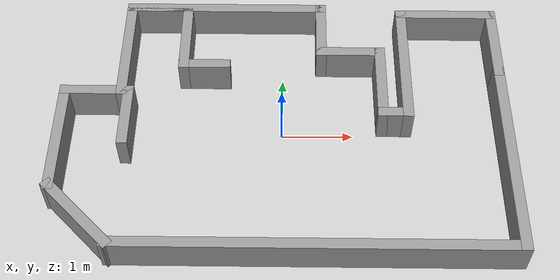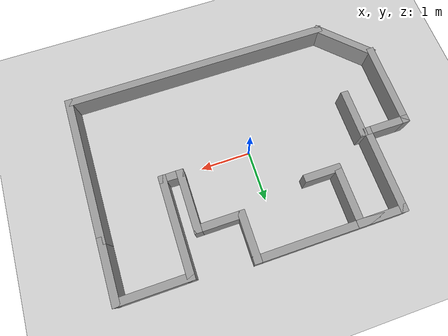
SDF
<sdf version="1.7">
 <world name="default">
  <light name="sun" type="directional">
   <pose>0 0 10 0 -0 0</pose>
   <diffuse>0.8 0.8 0.8 1</diffuse>
   <specular>0.2 0.2 0.2 1</specular>
   <attenuation>
    <range>1000</range>
    <constant>0.9</constant>
    <linear>0.01</linear>
    <quadratic>0.001</quadratic>
   </attenuation>
   <direction>-0.5 0.1 -0.9</direction>
   <spot><inner_angle>0</inner_angle><outer_angle>0</outer_angle><falloff>0</falloff></spot>
  </light>
  <model name="ground_plane">
   <static>1</static>
   <link name="link">
    <collision name="collision">
     <geometry><plane><normal>0 0 1</normal><size>100 100</size></plane></geometry>
     <surface><friction><ode><mu>100</mu><mu2>50</mu2></ode></friction></surface>
    </collision>
    <visual name="visual">
     <cast_shadows>0</cast_shadows>
     <geometry><plane><normal>0 0 1</normal><size>100 100</size></plane></geometry>
     <material>
      <script><uri>file://media/materials/scripts/gazebo.material</uri><name>Gazebo/Grey</name></script>
     </material>
    </visual>
   </link>
  </model>
  <gravity>0 0 -9.8</gravity>
  <magnetic_field>6e-06 2.3e-05 -4.2e-05</magnetic_field>
  <atmosphere type="adiabatic"/>
  <physics type="ode">
   <max_step_size>0.001</max_step_size>
   <real_time_factor>1</real_time_factor>
   <real_time_update_rate>0.0</real_time_update_rate>
   <max_step_size>0.003</max_step_size>
   <ode>
    <solver>
     <type>quick</type>
     <iters>150</iters>
     <precon_iters>0</precon_iters>
     <sor>1.400000</sor>
     <use_dynamic_moi_rescaling>1</use_dynamic_moi_rescaling>
    </solver>
    <constraints>
     <cfm>0.00001</cfm>
     <erp>0.2</erp>
     <contact_max_correcting_vel>2000.000000</contact_max_correcting_vel>
     <contact_surface_layer>0.01000</contact_surface_layer>
    </constraints>
   </ode>
   <max_step_size>0.003</max_step_size>
   <ode>
    <solver>
     <type>quick</type>
     <iters>150</iters>
     <precon_iters>0</precon_iters>
     <sor>1.400000</sor>
     <use_dynamic_moi_rescaling>1</use_dynamic_moi_rescaling>
    </solver>
    <constraints>
     <cfm>0.00001</cfm>
     <erp>0.2</erp>
     <contact_max_correcting_vel>2000.000000</contact_max_correcting_vel>
     <contact_surface_layer>0.01000</contact_surface_layer>
    </constraints>
   </ode>
  </physics>
  <scene><ambient>0.4 0.4 0.4 1</ambient><background>0.7 0.7 0.7 1</background><shadows>1</shadows></scene>
  <spherical_coordinates>
   <surface_model>EARTH_WGS84</surface_model>
   <latitude_deg>0</latitude_deg>
   <longitude_deg>0</longitude_deg>
   <elevation>0</elevation>
   <heading_deg>0</heading_deg>
  </spherical_coordinates>
  <model name="ral2310_2.world">
   <link name="Wall_0">
    <collision name="Wall_0_Collision">
     <geometry><box><size>5.5 0.15 0.5</size></box></geometry>
     <pose>0 0 0.25 0 -0 0</pose>
    </collision>
    <visual name="Wall_0_Visual">
     <pose>0 0 0.25 0 -0 0</pose>
     <geometry><box><size>5.5 0.15 0.5</size></box></geometry>
     <material>
      <script><uri>file://media/materials/scripts/gazebo.material</uri><name>Gazebo/Grey</name></script>
      <ambient>1 1 1 1</ambient>
     </material>
     <meta><layer>0</layer></meta>
    </visual>
    <pose>0.440533 -2.00947 0 0 -0 3.14159</pose>
   </link>
   <link name="Wall_10">
    <collision name="Wall_10_Collision">
     <geometry><box><size>1.75 0.15 0.5</size></box></geometry>
     <pose>0 0 0.25 0 -0 0</pose>
    </collision>
    <visual name="Wall_10_Visual">
     <pose>0 0 0.25 0 -0 0</pose>
     <geometry><box><size>1.75 0.15 0.5</size></box></geometry>
     <material>
      <script><uri>file://media/materials/scripts/gazebo.material</uri><name>Gazebo/Grey</name></script>
      <ambient>1 1 1 1</ambient>
     </material>
     <meta><layer>0</layer></meta>
    </visual>
    <pose>-3.08447 -0.359467 0 0 -0 1.5708</pose>
   </link>
   <link name="Wall_12">
    <collision name="Wall_12_Collision">
     <geometry><box><size>1.35208 0.15 0.5</size></box></geometry>
     <pose>0 0 0.25 0 -0 0</pose>
    </collision>
    <visual name="Wall_12_Visual">
     <pose>0 0 0.25 0 -0 0</pose>
     <geometry><box><size>1.35208 0.15 0.5</size></box></geometry>
     <material>
      <script><uri>file://media/materials/scripts/gazebo.material</uri><name>Gazebo/Grey</name></script>
      <ambient>1 1 1 1</ambient>
     </material>
     <meta><layer>0</layer></meta>
    </visual>
    <pose>-2.65947 -1.58447 0 0 -0 2.35619</pose>
   </link>
   <link name="Wall_2">
    <collision name="Wall_2_Collision">
     <geometry><box><size>3 0.15 0.5</size></box></geometry>
     <pose>0 0 0.25 0 -0 0</pose>
    </collision>
    <visual name="Wall_2_Visual">
     <pose>0 0 0.25 0 -0 0</pose>
     <geometry><box><size>3 0.15 0.5</size></box></geometry>
     <material>
      <script><uri>file://media/materials/scripts/gazebo.material</uri><name>Gazebo/Grey</name></script>
      <ambient>1 1 1 1</ambient>
     </material>
     <meta><layer>0</layer></meta>
    </visual>
    <pose>3.11553 -0.584467 0 0 -0 1.5708</pose>
   </link>
   <link name="Wall_21">
    <collision name="Wall_21_Collision">
     <geometry><box><size>0.5 0.15 0.5</size></box></geometry>
     <pose>0 0 0.25 0 -0 0</pose>
    </collision>
    <visual name="Wall_21_Visual">
     <pose>0 0 0.25 0 -0 0</pose>
     <geometry><box><size>0.5 0.15 0.5</size></box></geometry>
     <material>
      <script><uri>file://media/materials/scripts/gazebo.material</uri><name>Gazebo/Grey</name></script>
      <ambient>1 1 1 1</ambient>
     </material>
     <meta><layer>0</layer></meta>
    </visual>
    <pose>1.59053 0.090533 0 0 -0 3.14159</pose>
   </link>
   <link name="Wall_22">
    <collision name="Wall_22_Collision">
     <geometry><box><size>1.25 0.15 0.5</size></box></geometry>
     <pose>0 0 0.25 0 -0 0</pose>
    </collision>
    <visual name="Wall_22_Visual">
     <pose>0 0 0.25 0 -0 0</pose>
     <geometry><box><size>1.25 0.15 0.5</size></box></geometry>
     <material>
      <script><uri>file://media/materials/scripts/gazebo.material</uri><name>Gazebo/Grey</name></script>
      <ambient>1 1 1 1</ambient>
     </material>
     <meta><layer>0</layer></meta>
    </visual>
    <pose>1.41553 0.640533 0 0 -0 1.5708</pose>
   </link>
   <link name="Wall_23">
    <collision name="Wall_23_Collision">
     <geometry><box><size>1 0.15 0.5</size></box></geometry>
     <pose>0 0 0.25 0 -0 0</pose>
    </collision>
    <visual name="Wall_23_Visual">
     <pose>0 0 0.25 0 -0 0</pose>
     <geometry><box><size>1 0.15 0.5</size></box></geometry>
     <material>
      <script><uri>file://media/materials/scripts/gazebo.material</uri><name>Gazebo/Grey</name></script>
      <ambient>1 1 1 1</ambient>
     </material>
     <meta><layer>0</layer></meta>
    </visual>
    <pose>0.990533 1.19053 0 0 -0 3.14159</pose>
   </link>
   <link name="Wall_24">
    <collision name="Wall_24_Collision">
     <geometry><box><size>1 0.15 0.5</size></box></geometry>
     <pose>0 0 0.25 0 -0 0</pose>
    </collision>
    <visual name="Wall_24_Visual">
     <pose>0 0 0.25 0 -0 0</pose>
     <geometry><box><size>1 0.15 0.5</size></box></geometry>
     <material>
      <script><uri>file://media/materials/scripts/gazebo.material</uri><name>Gazebo/Grey</name></script>
      <ambient>1 1 1 1</ambient>
     </material>
     <meta><layer>0</layer></meta>
    </visual>
    <pose>0.565533 1.61553 0 0 -0 1.5708</pose>
   </link>
   <link name="Wall_25">
    <collision name="Wall_25_Collision">
     <geometry><box><size>3 0.15 0.5</size></box></geometry>
     <pose>0 0 0.25 0 -0 0</pose>
    </collision>
    <visual name="Wall_25_Visual">
     <pose>0 0 0.25 0 -0 0</pose>
     <geometry><box><size>3 0.15 0.5</size></box></geometry>
     <material>
      <script><uri>file://media/materials/scripts/gazebo.material</uri><name>Gazebo/Grey</name></script>
      <ambient>1 1 1 1</ambient>
     </material>
     <meta><layer>0</layer></meta>
    </visual>
    <pose>-0.859467 2.04053 0 0 -0 3.14159</pose>
   </link>
   <link name="Wall_26">
    <collision name="Wall_26_Collision">
     <geometry><box><size>1.75 0.15 0.5</size></box></geometry>
     <pose>0 0 0.25 0 -0 0</pose>
    </collision>
    <visual name="Wall_26_Visual">
     <pose>0 0 0.25 0 -0 0</pose>
     <geometry><box><size>1.75 0.15 0.5</size></box></geometry>
     <material>
      <script><uri>file://media/materials/scripts/gazebo.material</uri><name>Gazebo/Grey</name></script>
      <ambient>1 1 1 1</ambient>
     </material>
     <meta><layer>0</layer></meta>
    </visual>
    <pose>-2.28447 1.24053 0 0 -0 -1.5708</pose>
   </link>
   <link name="Wall_27">
    <collision name="Wall_27_Collision">
     <geometry><box><size>0.95 0.15 0.5</size></box></geometry>
     <pose>0 0 0.25 0 -0 0</pose>
    </collision>
    <visual name="Wall_27_Visual">
     <pose>0 0 0.25 0 -0 0</pose>
     <geometry><box><size>0.95 0.15 0.5</size></box></geometry>
     <material>
      <script><uri>file://media/materials/scripts/gazebo.material</uri><name>Gazebo/Grey</name></script>
      <ambient>1 1 1 1</ambient>
     </material>
     <meta><layer>0</layer></meta>
    </visual>
    <pose>-2.68447 0.440533 0 0 -0 -3.14159</pose>
   </link>
   <link name="Wall_30">
    <collision name="Wall_30_Collision">
     <geometry><box><size>1.25 0.15 0.5</size></box></geometry>
     <pose>0 0 0.25 0 -0 0</pose>
    </collision>
    <visual name="Wall_30_Visual">
     <pose>0 0 0.25 0 -0 0</pose>
     <geometry><box><size>1.25 0.15 0.5</size></box></geometry>
     <material>
      <script><uri>file://media/materials/scripts/gazebo.material</uri><name>Gazebo/Grey</name></script>
      <ambient>1 1 1 1</ambient>
     </material>
     <meta><layer>0</layer></meta>
    </visual>
    <pose>3.11553 1.39053 0 0 -0 1.5708</pose>
   </link>
   <link name="Wall_34">
    <collision name="Wall_34_Collision">
     <geometry><box><size>2 0.15 0.5</size></box></geometry>
     <pose>0 0 0.25 0 -0 0</pose>
    </collision>
    <visual name="Wall_34_Visual">
     <pose>0 0 0.25 0 -0 0</pose>
     <geometry><box><size>2 0.15 0.5</size></box></geometry>
     <material>
      <script><uri>file://media/materials/scripts/gazebo.material</uri><name>Gazebo/Grey</name></script>
      <ambient>1 1 1 1</ambient>
     </material>
     <meta><layer>0</layer></meta>
    </visual>
    <pose>1.76553 1.01553 0 0 -0 1.5708</pose>
   </link>
   <link name="Wall_35">
    <collision name="Wall_35_Collision">
     <geometry><box><size>1.5 0.15 0.5</size></box></geometry>
     <pose>0 0 0.25 0 -0 0</pose>
    </collision>
    <visual name="Wall_35_Visual">
     <pose>0 0 0.25 0 -0 0</pose>
     <geometry><box><size>1.5 0.15 0.5</size></box></geometry>
     <material>
      <script><uri>file://media/materials/scripts/gazebo.material</uri><name>Gazebo/Grey</name></script>
      <ambient>1 1 1 1</ambient>
     </material>
     <meta><layer>0</layer></meta>
    </visual>
    <pose>2.44053 1.94053 0 0 -0 0</pose>
   </link>
   <link name="Wall_37">
    <collision name="Wall_37_Collision">
     <geometry><box><size>0.25 0.15 0.5</size></box></geometry>
     <pose>0 0 0.25 0 -0 0</pose>
    </collision>
    <visual name="Wall_37_Visual">
     <pose>0 0 0.25 0 -0 0</pose>
     <geometry><box><size>0.25 0.15 0.5</size></box></geometry>
     <material>
      <script><uri>file://media/materials/scripts/gazebo.material</uri><name>Gazebo/Grey</name></script>
      <ambient>1 1 1 1</ambient>
     </material>
     <meta><layer>0</layer></meta>
    </visual>
    <pose>-2.23447 0.440533 0 0 -0 0</pose>
   </link>
   <link name="Wall_38">
    <collision name="Wall_38_Collision">
     <geometry><box><size>1 0.15 0.5</size></box></geometry>
     <pose>0 0 0.25 0 -0 0</pose>
    </collision>
    <visual name="Wall_38_Visual">
     <pose>0 0 0.25 0 -0 0</pose>
     <geometry><box><size>1 0.15 0.5</size></box></geometry>
     <material>
      <script><uri>file://media/materials/scripts/gazebo.material</uri><name>Gazebo/Grey</name></script>
      <ambient>1 1 1 1</ambient>
     </material>
     <meta><layer>0</layer></meta>
    </visual>
    <pose>-2.18447 0.015533 0 0 -0 -1.5708</pose>
   </link>
   <link name="Wall_40">
    <collision name="Wall_40_Collision">
     <geometry><box><size>1 0.15 0.5</size></box></geometry>
     <pose>0 0 0.25 0 -0 0</pose>
    </collision>
    <visual name="Wall_40_Visual">
     <pose>0 0 0.25 0 -0 0</pose>
     <geometry><box><size>1 0.15 0.5</size></box></geometry>
     <material>
      <script><uri>file://media/materials/scripts/gazebo.material</uri><name>Gazebo/Grey</name></script>
      <ambient>1 1 1 1</ambient>
     </material>
     <meta><layer>0</layer></meta>
    </visual>
    <pose>-1.85947 2.04053 0 0 -0 0</pose>
   </link>
   <link name="Wall_41">
    <collision name="Wall_41_Collision">
     <geometry><box><size>1.25 0.15 0.5</size></box></geometry>
     <pose>0 0 0.25 0 -0 0</pose>
    </collision>
    <visual name="Wall_41_Visual">
     <pose>0 0 0.25 0 -0 0</pose>
     <geometry><box><size>1.25 0.15 0.5</size></box></geometry>
     <material>
      <script><uri>file://media/materials/scripts/gazebo.material</uri><name>Gazebo/Grey</name></script>
      <ambient>1 1 1 1</ambient>
     </material>
     <meta><layer>0</layer></meta>
    </visual>
    <pose>-1.43447 1.49053 0 0 -0 -1.5708</pose>
   </link>
   <link name="Wall_42">
    <collision name="Wall_42_Collision">
     <geometry><box><size>0.75 0.15 0.5</size></box></geometry>
     <pose>0 0 0.25 0 -0 0</pose>
    </collision>
    <visual name="Wall_42_Visual">
     <pose>0 0 0.25 0 -0 0</pose>
     <geometry><box><size>0.75 0.15 0.5</size></box></geometry>
     <material>
      <script><uri>file://media/materials/scripts/gazebo.material</uri><name>Gazebo/Grey</name></script>
      <ambient>1 1 1 1</ambient>
     </material>
     <meta><layer>0</layer></meta>
    </visual>
    <pose>-1.13447 0.940533 0 0 -0 0</pose>
   </link>
   <static>1</static>
  </model>
 </world>
</sdf>
